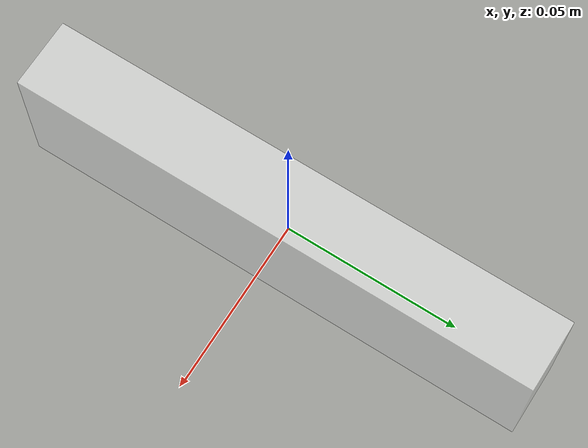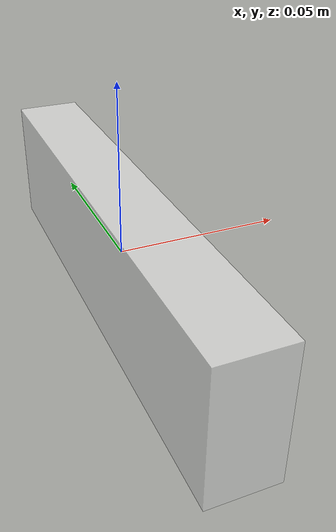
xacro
<robot name="usbcam" xmlns:xacro="http://www.ros.org/wiki/xacro">
    <xacro:property name="camera_length" value="0.02" />
    <xacro:property name="camera_width" value="0.15" />
    <xacro:property name="camera_height" value="0.04" />
    <!-- 添加质量 -->
    <xacro:property name="camera_mass" value="0.02" />

    <xacro:property name="camera_x_bias" value="0.08" />
    <xacro:property name="camera_y_bias" value="0" />
    <xacro:property name="camera_z_bias" value="${car_base_hight / 2 + camera_height / 2}" />

    <xacro:property name="PI" value="3.1415926" />

    <xacro:macro name="Box_inertial_matrix" params="m l w h">
        <inertial>
                <mass value="${m}" />
                <inertia ixx="${m*(h*h + l*l)/12}" ixy = "0" ixz = "0" iyy="${m*(w*w + l*l)/12}" iyz= "0" izz="${m*(w*w + h*h)/12}" />
        </inertial>
    </xacro:macro>

    <link name="usbcam_link">
        <visual>
            <geometry>
                <box size="${camera_length} ${camera_width} ${camera_height}" />
            </geometry>
            <origin xyz="0 0 0" rpy="0 0 0" />
            <material name="camera_color">
                <color rgba="1 1 1 0.5" />
            </material>
        </visual>
        <!-- 添加碰撞检测 -->
        <collision>
            <geometry>
                <box size="${camera_length} ${camera_width} ${camera_height}" />
            </geometry>
            <origin xyz="0 0 0" rpy="0 0 0" />
        </collision>
        <!-- 惯性矩阵 -->
        <xacro:Box_inertial_matrix m="${camera_mass}" l="${camera_length}" w="${camera_width}" h="${camera_height}" />
    </link>

    <!-- 添加颜色 -->
    <gazebo reference="usbcam_link" >
        <material>Gazebo/Gray</material>
    </gazebo>

    <gazebo reference="usbcam_link">
        <sensor type="depth" name="camera">
            <always_on>true</always_on>
            <update_rate>20.0</update_rate>
            <camera>
                <horizontal_fov>${60.0*PI/180.0}</horizontal_fov>
                <image>
                    <format>R8G8B8</format>
                    <width>640</width>
                    <height>480</height>
                </image>
                <clip>
                    <near>0.05</near>
                    <far>8.0</far>
                </clip>
            </camera>
            <plugin name="kinect_camera_controller" filename="libgazebo_ros_openni_kinect.so">
                <!-- 相机数据输出的topic名 -->
                <cameraName>depth_camera</cameraName>
                <alwaysOn>true</alwaysOn>
                <updateRate>10</updateRate>
                <imageTopicName>rgb/image_raw</imageTopicName>  <!-- 深度相机也具备一般摄像头的功能，也可以采集一般图像 -->
                <depthImageTopicName>depth/image_raw</depthImageTopicName>
                <pointCloudTopicName>depth/points</pointCloudTopicName>
                <cameraInfoTopicName>rgb/camera_info</cameraInfoTopicName>
                <depthImageCameraInfoTopicName>depth/camera_info</depthImageCameraInfoTopicName>
                <!-- 此处为连杆名 -->
                <!-- 此处的修改是为了后面点云坐标系调整 -->
                <frameName>usbcam_link</frameName>
                <baseline>0.1</baseline>
                <distortion_k1>0.0</distortion_k1>
                <distortion_k2>0.0</distortion_k2>
                <distortion_k3>0.0</distortion_k3>
                <distortion_t1>0.0</distortion_t1>
                <distortion_t2>0.0</distortion_t2>
                <pointCloudCutoff>0.4</pointCloudCutoff>
            </plugin>
        </sensor>
    </gazebo>

</robot>
